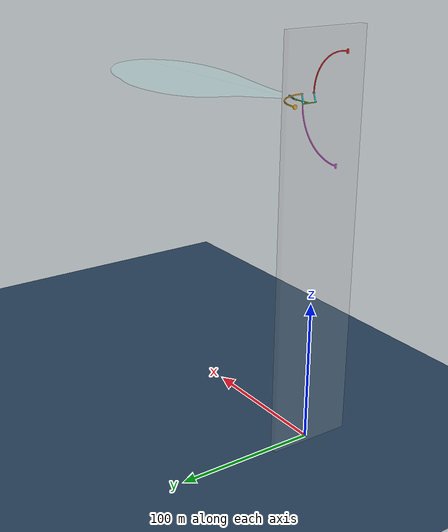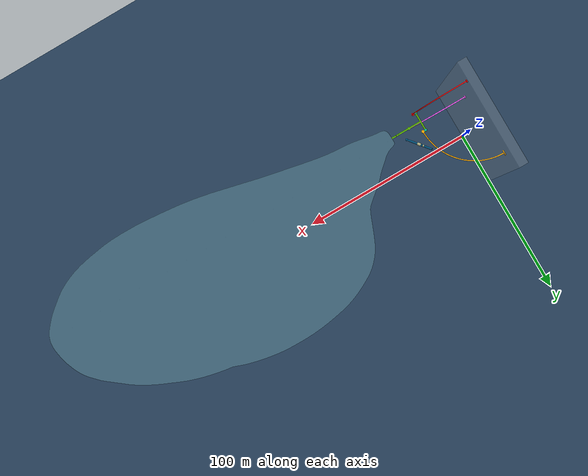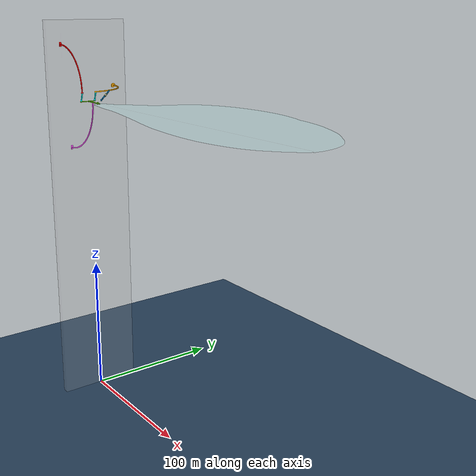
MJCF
<?xml version="1.0" ?>
<mujoco>
  <compiler coordinate="global" angle="radian"/>
  <option gravity="0.0 0.0 -9.81" timestep="0.005"/>
  <asset>
    <mesh file="./mesh_files/mount_plate.stl"/>
    <mesh file="./mesh_files/sla.stl"/>
    <mesh file="./mesh_files/scu.stl"/>
    <mesh file="./mesh_files/pwp.stl"/>
    <mesh file="./mesh_files/mu1.stl"/>
    <mesh file="./mesh_files/mu1.stl"/>
    <mesh file="./mesh_files/ax1_and_vein.stl"/>
    <mesh file="./mesh_files/wing.stl"/>
    <mesh file="./mesh_files/ax3.stl"/>
    <mesh file="./mesh_files/ax4.stl"/>
    <material name="color_0" rgba="0.00 0.33 0.50 1.00"/>
    <material name="color_1" rgba="1.00 0.33 1.00 1.00"/>
    <material name="color_2" rgba="0.00 1.00 1.00 1.00"/>
    <material name="color_3" rgba="0.80 0.80 0.80 0.20"/>
    <material name="color_4" rgba="1.00 0.67 0.00 1.00"/>
    <material name="color_5" rgba="1.00 0.00 0.00 1.00"/>
    <material name="color_6" rgba="0.33 0.67 0.00 1.00"/>
    <material name="color_7" rgba="0.67 1.00 1.00 0.20"/>
    <material name="color_8" rgba="0.67 0.67 0.50 1.00"/>
    <texture name="grid" type="2d" builtin="checker" width="512" height="512" rgb1="0.1 0.2 0.3" rgb2="0.2 0.3 0.4"/>
    <material name="grid" texture="grid" texrepeat="10 10" texuniform="false" reflectance=".2"/>
  </asset>
  <worldbody>
    <geom name="floor" type="plane" material="grid" condim="3" size="2800.0000000000027 2800.0000000000027 0.05"/>
    <light name="spotlight" mode="targetbodycom" diffuse="0.8 0.8 0.8" specular="0.2 0.2 0.2" pos="368.07778344865073 74.97191982793012 420.00000000000045" cutoff="560.0000000000006" target="mount_plate_001"/>
    <body name="mount_plate_001" pos="0.0 0.0 0.0" quat="1.0 0.0 0.0 0.0">
      <geom name="mount_plate_001_mesh" type="mesh" mesh="mount_plate" material="color_3" pos="0.0 0.0 0.0" quat="1.0 0.0 0.0 0.0"/>
      <freejoint name="mount_plate_001_joint"/>
      <body name="sla_001" pos="-0.500000000000266 19.99999999379196 233.72669307513883" quat="6.317222293885728e-09 0.7071067855762254 -0.7071067767968696 6.317220958106056e-09">
        <geom name="sla_001_mesh" type="mesh" mesh="sla" material="color_4" pos="-0.500000000000266 19.99999999379196 233.72669307513883" quat="6.317222293885728e-09 0.7071067855762254 -0.7071067767968696 6.317220958106056e-09"/>
        <joint name="sla_001_joint" type="hinge" pos="-0.500000000000266 19.99999999379196 233.72669307513883" axis="1.0 0.0 0.0" limited="false" springref="0"/>
        <body name="mu1_002" pos="29.49820738112286 -10.00520945856499 233.03489034965875" quat="0.574217688289339 -0.00014248349050067333 0.8187026420876015 -9.996440947986177e-05">
          <geom name="mu1_002_mesh" type="mesh" mesh="mu1" material="color_2" pos="29.49820738112286 -10.00520945856499 233.03489034965875" quat="0.574217688289339 -0.00014248349050067333 0.8187026420876015 -9.996440947986177e-05" density="0.001"/>
          <joint name="mu1_002_joint_axis1" type="hinge" pos="29.49820738112286 -10.00520945856499 233.03489034965875" axis="1.0 1.2415884083011619e-08 -2.222044605562574e-15" limited="false" springref="0"/>
          <joint name="mu1_002_joint_axis2" type="hinge" pos="29.49820738112286 -10.00520945856499 233.03489034965875" axis="1.2415884003197061e-08 -0.9999999999999998 1.7867801000000004e-08" limited="false" springref="0"/>
        </body>
        <body name="ax3_001" pos="30.06545844965662 -0.001250812718285 233.7258780996269" quat="0.890161215478691 0.014352641420238307 0.17423841823319997 -0.4207707044856548">
          <geom name="ax3_001_mesh" type="mesh" mesh="ax3" material="color_0" pos="30.06545844965662 -0.001250812718285 233.7258780996269" quat="0.890161215478691 0.014352641420238307 0.17423841823319997 -0.4207707044856548" density="0.001"/>
          <joint name="ax3_001_joint_axis1" type="hinge" pos="30.06545844965662 -0.001250812718285 233.7258780996269" axis="1.2415884003197061e-08 -0.9999999999999998 1.7867801000000004e-08" limited="false" springref="0"/>
          <joint name="ax3_001_joint_axis2" type="hinge" pos="30.06545844965662 -0.001250812718285 233.7258780996269" axis="-1.778155455961102e-15 -1.7867801000000024e-08 -1.0" limited="false" springref="0"/>
          <body name="ax4_001" pos="32.87437538414779 -3.57676909474147 232.17702152411871" quat="0.8901607787611101 0.014352506547433004 0.174238515281891 -0.42077159279540494">
            <geom name="ax4_001_mesh" type="mesh" mesh="ax4" material="color_8" pos="32.87437538414779 -3.57676909474147 232.17702152411871" quat="0.8901607787611101 0.014352506547433004 0.174238515281891 -0.42077159279540494" density="0.001"/>
            <joint name="ax4_001_joint" type="slide" pos="32.87437538414779 -3.57676909474147 232.17702152411871" axis="0.5851859757164767 -0.74410596040849 -0.3222789063983468" limited="false" springref="0"/>
          </body>
        </body>
      </body>
      <body name="scu_001" pos="-0.500000017829198 -19.999999997562195 263.66919307866766" quat="0.5000000044604502 -0.4999999992360228 0.5000000007639748 0.4999999955395524">
        <geom name="scu_001_mesh" type="mesh" mesh="scu" material="color_5" pos="-0.500000017829198 -19.999999997562195 263.66919307866766" quat="0.5000000044604502 -0.4999999992360228 0.5000000007639748 0.4999999955395524"/>
        <joint name="scu_001_joint" type="slide" pos="-0.500000017829198 -19.999999997562195 263.66919307866766" axis="0.0 0.0 1.0" limited="false" springref="0"/>
        <body name="mu1_001" pos="29.49940094521707 -20.000217147111762 233.03415062301033" quat="0.5737503098224158 -0.003452637159256845 0.8190176137185423 0.0029681128876141195">
          <geom name="mu1_001_mesh" type="mesh" mesh="mu1" material="color_2" pos="29.49940094521707 -20.000217147111762 233.03415062301033" quat="0.5737503098224158 -0.003452637159256845 0.8190176137185423 0.0029681128876141195" density="0.001"/>
          <joint name="mu1_001_joint_axis1" type="hinge" pos="29.49940094521707 -20.000217147111762 233.03415062301033" axis="1.0 -1.0448849591115916e-08 7.3929458666022185e-09" limited="false" springref="0"/>
          <joint name="mu1_001_joint_axis2" type="hinge" pos="29.49940094521707 -20.000217147111762 233.03415062301033" axis="1.0448849840916097e-08 1.0000000000000002 5.079270337660091e-15" limited="false" springref="0"/>
        </body>
      </body>
      <body name="pwp_001" pos="-0.499999982255449 -15.020000000570048 191.9658069223799" quat="0.5000000024124049 0.500000003937422 -0.49999999606258205 0.49999999758759106">
        <geom name="pwp_001_mesh" type="mesh" mesh="pwp" material="color_1" pos="-0.499999982255449 -15.020000000570048 191.9658069223799" quat="0.5000000024124049 0.500000003937422 -0.49999999606258205 0.49999999758759106" density="0.001"/>
        <body name="ax1_and_vein_001" pos="34.50313945072931 -15.014127937315767 226.9652895772066" quat="0.9999999866587754 -2.6954432318491942e-05 -1.5486013498848883e-05 -0.00016036237389163314">
          <geom name="ax1_and_vein_001_mesh" type="mesh" mesh="ax1_and_vein" material="color_6" pos="34.50313945072931 -15.014127937315767 226.9652895772066" quat="0.9999999866587754 -2.6954432318491942e-05 -1.5486013498848883e-05 -0.00016036237389163314" density="0.001"/>
          <joint name="ax1_and_vein_001_joint_alpha" type="hinge" pos="34.50313945072931 -15.014127937315767 226.9652895772066" axis="1.0 3.050025926265576e-09 -1.269965427264097e-08" limited="false"/>
          <joint name="ax1_and_vein_001_joint_phi" type="hinge" pos="34.50313945072931 -15.014127937315767 226.9652895772066" axis="-3.0500261205546053e-09 1.0 8.132383655379272e-15" limited="false"/>
          <joint name="ax1_and_vein_001_joint_theta" type="hinge" pos="34.50313945072931 -15.014127937315767 226.9652895772066" axis="1.2699653995085214e-08 -8.215650381887537e-15 1.0" limited="false"/>
          <body name="wing_001" pos="44.50273783560285 -15.017567690487594 227.53318386836963" quat="2.6422601173923026e-05 0.9999999827467686 -0.00018343465725787256 1.2650496816971746e-05">
            <geom name="wing_001_mesh" type="mesh" mesh="wing" material="color_7" pos="44.50273783560285 -15.017567690487594 227.53318386836963" quat="2.6422601173923026e-05 0.9999999827467686 -0.00018343465725787256 1.2650496816971746e-05" density="0.001"/>
          </body>
        </body>
      </body>
    </body>
  </worldbody>
  <equality>
    <connect body1="mu1_001" body2="ax1_and_vein_001" anchor="27.705895279711935 -20.011886967452924 228.1003485620691" solimp="1.0 1.0 0.001 0.5 2.0"/>
    <connect body1="mu1_002" body2="ax1_and_vein_001" anchor="27.70910253549531 -10.011887496305567 228.09980952309738" solimp="1.0 1.0 0.001 0.5 2.0"/>
    <connect body1="ax4_001" body2="ax1_and_vein_001" anchor="41.30335164661235 -14.298778301741004 227.53296156863001" solimp="1.0 1.0 0.001 0.5 2.0"/>
  </equality>
  <actuator>
    <position name="sla_001_position" joint="sla_001_joint" gear="1" forcelimited="false" ctrllimited="false" kp="6.0e11"/>
    <velocity name="sla_001_velocity" joint="sla_001_joint" gear="1" forcelimited="false" ctrllimited="false" kv="1.0e10"/>
    <position name="scu_001_position" joint="scu_001_joint" gear="1" forcelimited="false" ctrllimited="false" kp="6.0e8"/>
    <velocity name="scu_001_velocity" joint="scu_001_joint" gear="1" forcelimited="false" ctrllimited="false" kv="1.0e8"/>
    <position name="ax4_001_position" joint="ax4_001_joint" gear="1" forcelimited="false" ctrllimited="false" kp="3.0e5"/>
    <velocity name="ax4_001_velocity" joint="ax4_001_joint" gear="1" forcelimited="false" ctrllimited="false" kv="1.0e4"/>
  </actuator>
</mujoco>
